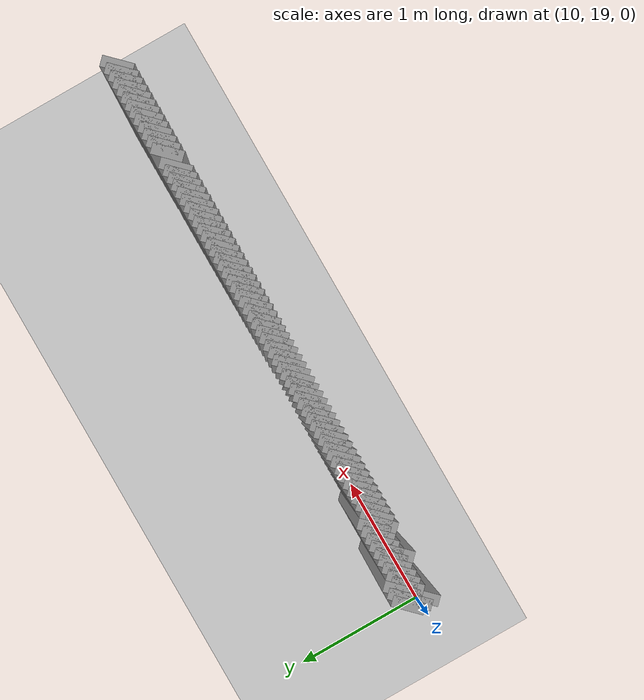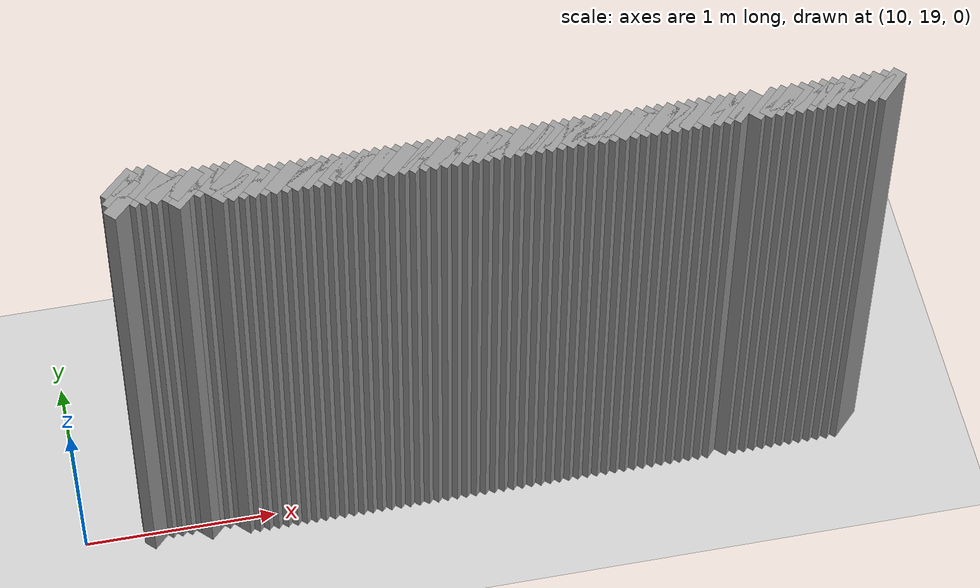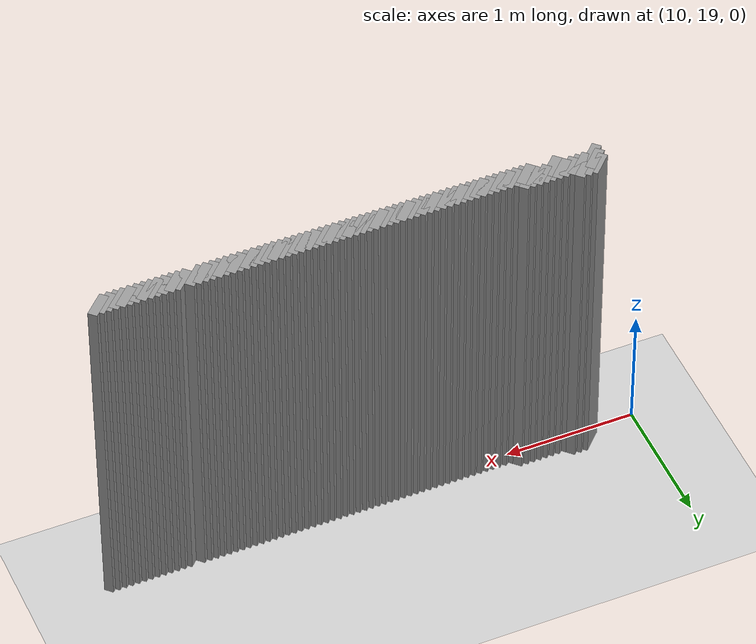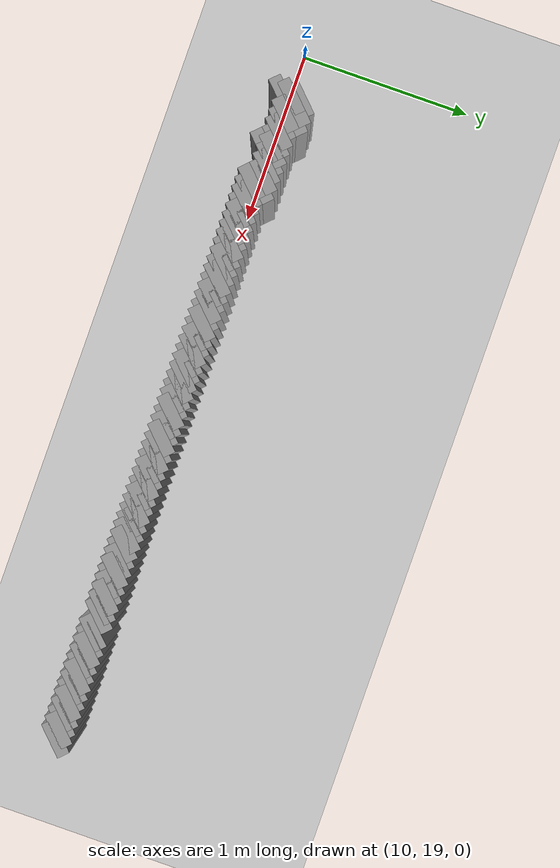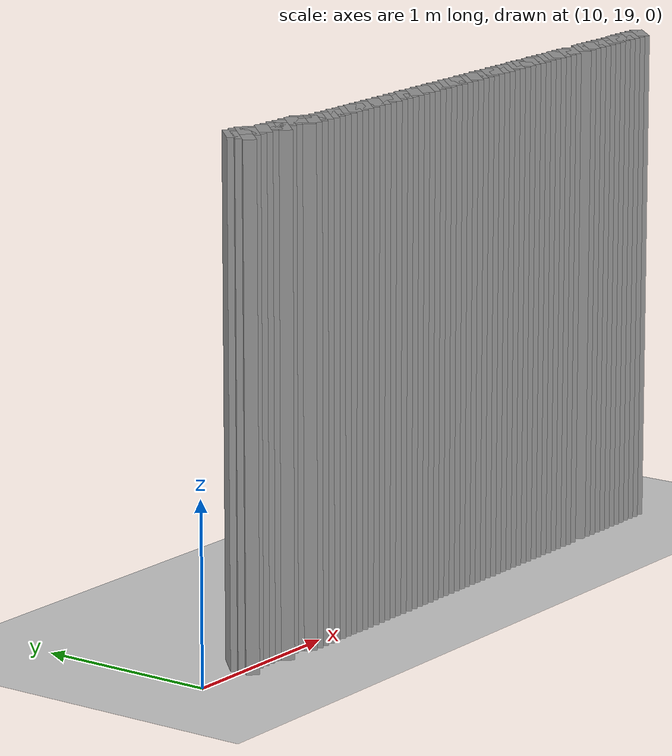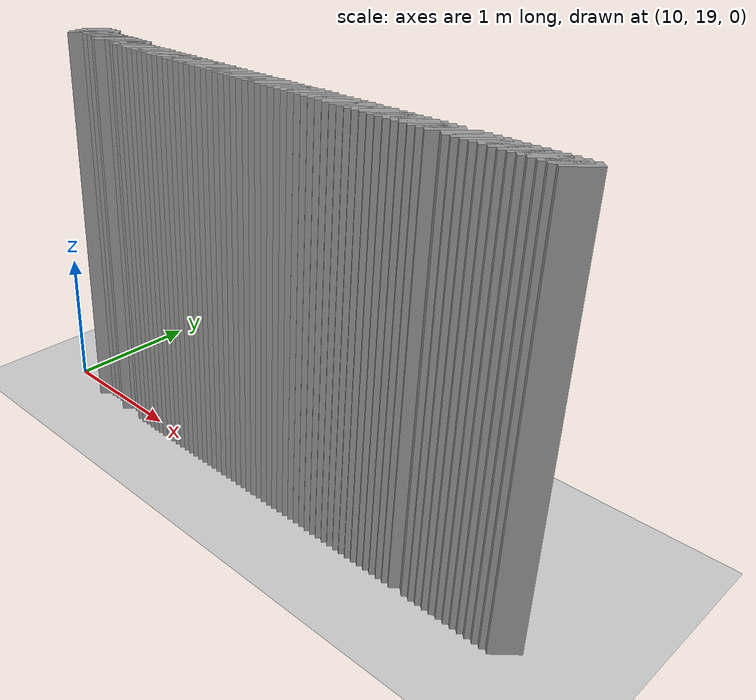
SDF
<sdf version="1.5">
 <world name="default">
  <include><uri>model://ground_plane</uri></include>
  <include><uri>model://sun</uri></include>
  <model name="grey_wall_1">
   <static>1</static>
   <link name="link">
    <pose>10.4 19.1  1.4 0 0 -0.785398163397</pose>
    <collision name="collision"><geometry><box><size>0.0707106781187 .2  2.8</size></box></geometry></collision>
    <visual name="visual">
     <cast_shadows>0</cast_shadows>
     <geometry><box><size>0.0707106781187 .2  2.8</size></box></geometry>
     <material>
      <script>
       <uri>model://grey_wall/materials/scripts</uri>
       <uri>model://grey_wall/materials/textures</uri>
       <name>vrc/grey_wall</name>
      </script>
     </material>
    </visual>
   </link>
  </model>
  <model name="grey_wall_2">
   <static>1</static>
   <link name="link">
    <pose>10.45 19.1  1.4 0 0 -0.785398163397</pose>
    <collision name="collision"><geometry><box><size>0.0707106781187 .2  2.8</size></box></geometry></collision>
    <visual name="visual">
     <cast_shadows>0</cast_shadows>
     <geometry><box><size>0.0707106781187 .2  2.8</size></box></geometry>
     <material>
      <script>
       <uri>model://grey_wall/materials/scripts</uri>
       <uri>model://grey_wall/materials/textures</uri>
       <name>vrc/grey_wall</name>
      </script>
     </material>
    </visual>
   </link>
  </model>
  <model name="grey_wall_3">
   <static>1</static>
   <link name="link">
    <pose>10.5 19.1  1.4 0 0 -0.785398163397</pose>
    <collision name="collision"><geometry><box><size>0.0707106781187 .2  2.8</size></box></geometry></collision>
    <visual name="visual">
     <cast_shadows>0</cast_shadows>
     <geometry><box><size>0.0707106781187 .2  2.8</size></box></geometry>
     <material>
      <script>
       <uri>model://grey_wall/materials/scripts</uri>
       <uri>model://grey_wall/materials/textures</uri>
       <name>vrc/grey_wall</name>
      </script>
     </material>
    </visual>
   </link>
  </model>
  <model name="grey_wall_4">
   <static>1</static>
   <link name="link">
    <pose>10.4 19.05  1.4 0 0 -0.785398163397</pose>
    <collision name="collision"><geometry><box><size>0.0707106781187 .2  2.8</size></box></geometry></collision>
    <visual name="visual">
     <cast_shadows>0</cast_shadows>
     <geometry><box><size>0.0707106781187 .2  2.8</size></box></geometry>
     <material>
      <script>
       <uri>model://grey_wall/materials/scripts</uri>
       <uri>model://grey_wall/materials/textures</uri>
       <name>vrc/grey_wall</name>
      </script>
     </material>
    </visual>
   </link>
  </model>
  <model name="grey_wall_5">
   <static>1</static>
   <link name="link">
    <pose>10.5 19.05  1.4 0 0 -0.785398163397</pose>
    <collision name="collision"><geometry><box><size>0.0707106781187 .2  2.8</size></box></geometry></collision>
    <visual name="visual">
     <cast_shadows>0</cast_shadows>
     <geometry><box><size>0.0707106781187 .2  2.8</size></box></geometry>
     <material>
      <script>
       <uri>model://grey_wall/materials/scripts</uri>
       <uri>model://grey_wall/materials/textures</uri>
       <name>vrc/grey_wall</name>
      </script>
     </material>
    </visual>
   </link>
  </model>
  <model name="grey_wall_6">
   <static>1</static>
   <link name="link">
    <pose>10.55 19.05  1.4 0 0 -0.785398163397</pose>
    <collision name="collision"><geometry><box><size>0.0707106781187 .2  2.8</size></box></geometry></collision>
    <visual name="visual">
     <cast_shadows>0</cast_shadows>
     <geometry><box><size>0.0707106781187 .2  2.8</size></box></geometry>
     <material>
      <script>
       <uri>model://grey_wall/materials/scripts</uri>
       <uri>model://grey_wall/materials/textures</uri>
       <name>vrc/grey_wall</name>
      </script>
     </material>
    </visual>
   </link>
  </model>
  <model name="grey_wall_7">
   <static>1</static>
   <link name="link">
    <pose>10.6 19.05  1.4 0 0 -0.785398163397</pose>
    <collision name="collision"><geometry><box><size>0.0707106781187 .2  2.8</size></box></geometry></collision>
    <visual name="visual">
     <cast_shadows>0</cast_shadows>
     <geometry><box><size>0.0707106781187 .2  2.8</size></box></geometry>
     <material>
      <script>
       <uri>model://grey_wall/materials/scripts</uri>
       <uri>model://grey_wall/materials/textures</uri>
       <name>vrc/grey_wall</name>
      </script>
     </material>
    </visual>
   </link>
  </model>
  <model name="grey_wall_8">
   <static>1</static>
   <link name="link">
    <pose>10.65 19.05  1.4 0 0 -0.785398163397</pose>
    <collision name="collision"><geometry><box><size>0.0707106781187 .2  2.8</size></box></geometry></collision>
    <visual name="visual">
     <cast_shadows>0</cast_shadows>
     <geometry><box><size>0.0707106781187 .2  2.8</size></box></geometry>
     <material>
      <script>
       <uri>model://grey_wall/materials/scripts</uri>
       <uri>model://grey_wall/materials/textures</uri>
       <name>vrc/grey_wall</name>
      </script>
     </material>
    </visual>
   </link>
  </model>
  <model name="grey_wall_9">
   <static>1</static>
   <link name="link">
    <pose>10.7 19.05  1.4 0 0 -0.785398163397</pose>
    <collision name="collision"><geometry><box><size>0.0707106781187 .2  2.8</size></box></geometry></collision>
    <visual name="visual">
     <cast_shadows>0</cast_shadows>
     <geometry><box><size>0.0707106781187 .2  2.8</size></box></geometry>
     <material>
      <script>
       <uri>model://grey_wall/materials/scripts</uri>
       <uri>model://grey_wall/materials/textures</uri>
       <name>vrc/grey_wall</name>
      </script>
     </material>
    </visual>
   </link>
  </model>
  <model name="grey_wall_10">
   <static>1</static>
   <link name="link">
    <pose>10.75 19.05  1.4 0 0 -0.785398163397</pose>
    <collision name="collision"><geometry><box><size>0.0707106781187 .2  2.8</size></box></geometry></collision>
    <visual name="visual">
     <cast_shadows>0</cast_shadows>
     <geometry><box><size>0.0707106781187 .2  2.8</size></box></geometry>
     <material>
      <script>
       <uri>model://grey_wall/materials/scripts</uri>
       <uri>model://grey_wall/materials/textures</uri>
       <name>vrc/grey_wall</name>
      </script>
     </material>
    </visual>
   </link>
  </model>
  <model name="grey_wall_11">
   <static>1</static>
   <link name="link">
    <pose>10.8 19.05  1.4 0 0 -0.785398163397</pose>
    <collision name="collision"><geometry><box><size>0.0707106781187 .2  2.8</size></box></geometry></collision>
    <visual name="visual">
     <cast_shadows>0</cast_shadows>
     <geometry><box><size>0.0707106781187 .2  2.8</size></box></geometry>
     <material>
      <script>
       <uri>model://grey_wall/materials/scripts</uri>
       <uri>model://grey_wall/materials/textures</uri>
       <name>vrc/grey_wall</name>
      </script>
     </material>
    </visual>
   </link>
  </model>
  <model name="grey_wall_12">
   <static>1</static>
   <link name="link">
    <pose>10.85 19.05  1.4 0 0 -0.785398163397</pose>
    <collision name="collision"><geometry><box><size>0.0707106781187 .2  2.8</size></box></geometry></collision>
    <visual name="visual">
     <cast_shadows>0</cast_shadows>
     <geometry><box><size>0.0707106781187 .2  2.8</size></box></geometry>
     <material>
      <script>
       <uri>model://grey_wall/materials/scripts</uri>
       <uri>model://grey_wall/materials/textures</uri>
       <name>vrc/grey_wall</name>
      </script>
     </material>
    </visual>
   </link>
  </model>
  <model name="grey_wall_13">
   <static>1</static>
   <link name="link">
    <pose>10.9 19.05  1.4 0 0 -0.785398163397</pose>
    <collision name="collision"><geometry><box><size>0.0707106781187 .2  2.8</size></box></geometry></collision>
    <visual name="visual">
     <cast_shadows>0</cast_shadows>
     <geometry><box><size>0.0707106781187 .2  2.8</size></box></geometry>
     <material>
      <script>
       <uri>model://grey_wall/materials/scripts</uri>
       <uri>model://grey_wall/materials/textures</uri>
       <name>vrc/grey_wall</name>
      </script>
     </material>
    </visual>
   </link>
  </model>
  <model name="grey_wall_14">
   <static>1</static>
   <link name="link">
    <pose>10.4 19.0  1.4 0 0 -0.785398163397</pose>
    <collision name="collision"><geometry><box><size>0.0707106781187 .2  2.8</size></box></geometry></collision>
    <visual name="visual">
     <cast_shadows>0</cast_shadows>
     <geometry><box><size>0.0707106781187 .2  2.8</size></box></geometry>
     <material>
      <script>
       <uri>model://grey_wall/materials/scripts</uri>
       <uri>model://grey_wall/materials/textures</uri>
       <name>vrc/grey_wall</name>
      </script>
     </material>
    </visual>
   </link>
  </model>
  <model name="grey_wall_15">
   <static>1</static>
   <link name="link">
    <pose>10.7 19.0  1.4 0 0 -0.785398163397</pose>
    <collision name="collision"><geometry><box><size>0.0707106781187 .2  2.8</size></box></geometry></collision>
    <visual name="visual">
     <cast_shadows>0</cast_shadows>
     <geometry><box><size>0.0707106781187 .2  2.8</size></box></geometry>
     <material>
      <script>
       <uri>model://grey_wall/materials/scripts</uri>
       <uri>model://grey_wall/materials/textures</uri>
       <name>vrc/grey_wall</name>
      </script>
     </material>
    </visual>
   </link>
  </model>
  <model name="grey_wall_16">
   <static>1</static>
   <link name="link">
    <pose>10.9 19.0  1.4 0 0 -0.785398163397</pose>
    <collision name="collision"><geometry><box><size>0.0707106781187 .2  2.8</size></box></geometry></collision>
    <visual name="visual">
     <cast_shadows>0</cast_shadows>
     <geometry><box><size>0.0707106781187 .2  2.8</size></box></geometry>
     <material>
      <script>
       <uri>model://grey_wall/materials/scripts</uri>
       <uri>model://grey_wall/materials/textures</uri>
       <name>vrc/grey_wall</name>
      </script>
     </material>
    </visual>
   </link>
  </model>
  <model name="grey_wall_17">
   <static>1</static>
   <link name="link">
    <pose>10.95 19.0  1.4 0 0 -0.785398163397</pose>
    <collision name="collision"><geometry><box><size>0.0707106781187 .2  2.8</size></box></geometry></collision>
    <visual name="visual">
     <cast_shadows>0</cast_shadows>
     <geometry><box><size>0.0707106781187 .2  2.8</size></box></geometry>
     <material>
      <script>
       <uri>model://grey_wall/materials/scripts</uri>
       <uri>model://grey_wall/materials/textures</uri>
       <name>vrc/grey_wall</name>
      </script>
     </material>
    </visual>
   </link>
  </model>
  <model name="grey_wall_18">
   <static>1</static>
   <link name="link">
    <pose>11.0 19.0  1.4 0 0 -0.785398163397</pose>
    <collision name="collision"><geometry><box><size>0.0707106781187 .2  2.8</size></box></geometry></collision>
    <visual name="visual">
     <cast_shadows>0</cast_shadows>
     <geometry><box><size>0.0707106781187 .2  2.8</size></box></geometry>
     <material>
      <script>
       <uri>model://grey_wall/materials/scripts</uri>
       <uri>model://grey_wall/materials/textures</uri>
       <name>vrc/grey_wall</name>
      </script>
     </material>
    </visual>
   </link>
  </model>
  <model name="grey_wall_19">
   <static>1</static>
   <link name="link">
    <pose>11.05 19.0  1.4 0 0 -0.785398163397</pose>
    <collision name="collision"><geometry><box><size>0.0707106781187 .2  2.8</size></box></geometry></collision>
    <visual name="visual">
     <cast_shadows>0</cast_shadows>
     <geometry><box><size>0.0707106781187 .2  2.8</size></box></geometry>
     <material>
      <script>
       <uri>model://grey_wall/materials/scripts</uri>
       <uri>model://grey_wall/materials/textures</uri>
       <name>vrc/grey_wall</name>
      </script>
     </material>
    </visual>
   </link>
  </model>
  <model name="grey_wall_20">
   <static>1</static>
   <link name="link">
    <pose>11.1 19.0  1.4 0 0 -0.785398163397</pose>
    <collision name="collision"><geometry><box><size>0.0707106781187 .2  2.8</size></box></geometry></collision>
    <visual name="visual">
     <cast_shadows>0</cast_shadows>
     <geometry><box><size>0.0707106781187 .2  2.8</size></box></geometry>
     <material>
      <script>
       <uri>model://grey_wall/materials/scripts</uri>
       <uri>model://grey_wall/materials/textures</uri>
       <name>vrc/grey_wall</name>
      </script>
     </material>
    </visual>
   </link>
  </model>
  <model name="grey_wall_21">
   <static>1</static>
   <link name="link">
    <pose>11.15 19.0  1.4 0 0 -0.785398163397</pose>
    <collision name="collision"><geometry><box><size>0.0707106781187 .2  2.8</size></box></geometry></collision>
    <visual name="visual">
     <cast_shadows>0</cast_shadows>
     <geometry><box><size>0.0707106781187 .2  2.8</size></box></geometry>
     <material>
      <script>
       <uri>model://grey_wall/materials/scripts</uri>
       <uri>model://grey_wall/materials/textures</uri>
       <name>vrc/grey_wall</name>
      </script>
     </material>
    </visual>
   </link>
  </model>
  <model name="grey_wall_22">
   <static>1</static>
   <link name="link">
    <pose>11.2 19.0  1.4 0 0 -0.785398163397</pose>
    <collision name="collision"><geometry><box><size>0.0707106781187 .2  2.8</size></box></geometry></collision>
    <visual name="visual">
     <cast_shadows>0</cast_shadows>
     <geometry><box><size>0.0707106781187 .2  2.8</size></box></geometry>
     <material>
      <script>
       <uri>model://grey_wall/materials/scripts</uri>
       <uri>model://grey_wall/materials/textures</uri>
       <name>vrc/grey_wall</name>
      </script>
     </material>
    </visual>
   </link>
  </model>
  <model name="grey_wall_23">
   <static>1</static>
   <link name="link">
    <pose>11.25 19.0  1.4 0 0 -0.785398163397</pose>
    <collision name="collision"><geometry><box><size>0.0707106781187 .2  2.8</size></box></geometry></collision>
    <visual name="visual">
     <cast_shadows>0</cast_shadows>
     <geometry><box><size>0.0707106781187 .2  2.8</size></box></geometry>
     <material>
      <script>
       <uri>model://grey_wall/materials/scripts</uri>
       <uri>model://grey_wall/materials/textures</uri>
       <name>vrc/grey_wall</name>
      </script>
     </material>
    </visual>
   </link>
  </model>
  <model name="grey_wall_24">
   <static>1</static>
   <link name="link">
    <pose>11.3 19.0  1.4 0 0 -0.785398163397</pose>
    <collision name="collision"><geometry><box><size>0.0707106781187 .2  2.8</size></box></geometry></collision>
    <visual name="visual">
     <cast_shadows>0</cast_shadows>
     <geometry><box><size>0.0707106781187 .2  2.8</size></box></geometry>
     <material>
      <script>
       <uri>model://grey_wall/materials/scripts</uri>
       <uri>model://grey_wall/materials/textures</uri>
       <name>vrc/grey_wall</name>
      </script>
     </material>
    </visual>
   </link>
  </model>
  <model name="grey_wall_25">
   <static>1</static>
   <link name="link">
    <pose>11.35 19.0  1.4 0 0 -0.785398163397</pose>
    <collision name="collision"><geometry><box><size>0.0707106781187 .2  2.8</size></box></geometry></collision>
    <visual name="visual">
     <cast_shadows>0</cast_shadows>
     <geometry><box><size>0.0707106781187 .2  2.8</size></box></geometry>
     <material>
      <script>
       <uri>model://grey_wall/materials/scripts</uri>
       <uri>model://grey_wall/materials/textures</uri>
       <name>vrc/grey_wall</name>
      </script>
     </material>
    </visual>
   </link>
  </model>
  <model name="grey_wall_26">
   <static>1</static>
   <link name="link">
    <pose>11.4 19.0  1.4 0 0 -0.785398163397</pose>
    <collision name="collision"><geometry><box><size>0.0707106781187 .2  2.8</size></box></geometry></collision>
    <visual name="visual">
     <cast_shadows>0</cast_shadows>
     <geometry><box><size>0.0707106781187 .2  2.8</size></box></geometry>
     <material>
      <script>
       <uri>model://grey_wall/materials/scripts</uri>
       <uri>model://grey_wall/materials/textures</uri>
       <name>vrc/grey_wall</name>
      </script>
     </material>
    </visual>
   </link>
  </model>
  <model name="grey_wall_27">
   <static>1</static>
   <link name="link">
    <pose>11.45 19.0  1.4 0 0 -0.785398163397</pose>
    <collision name="collision"><geometry><box><size>0.0707106781187 .2  2.8</size></box></geometry></collision>
    <visual name="visual">
     <cast_shadows>0</cast_shadows>
     <geometry><box><size>0.0707106781187 .2  2.8</size></box></geometry>
     <material>
      <script>
       <uri>model://grey_wall/materials/scripts</uri>
       <uri>model://grey_wall/materials/textures</uri>
       <name>vrc/grey_wall</name>
      </script>
     </material>
    </visual>
   </link>
  </model>
  <model name="grey_wall_28">
   <static>1</static>
   <link name="link">
    <pose>11.5 19.0  1.4 0 0 -0.785398163397</pose>
    <collision name="collision"><geometry><box><size>0.0707106781187 .2  2.8</size></box></geometry></collision>
    <visual name="visual">
     <cast_shadows>0</cast_shadows>
     <geometry><box><size>0.0707106781187 .2  2.8</size></box></geometry>
     <material>
      <script>
       <uri>model://grey_wall/materials/scripts</uri>
       <uri>model://grey_wall/materials/textures</uri>
       <name>vrc/grey_wall</name>
      </script>
     </material>
    </visual>
   </link>
  </model>
  <model name="grey_wall_29">
   <static>1</static>
   <link name="link">
    <pose>11.55 19.0  1.4 0 0 -0.785398163397</pose>
    <collision name="collision"><geometry><box><size>0.0707106781187 .2  2.8</size></box></geometry></collision>
    <visual name="visual">
     <cast_shadows>0</cast_shadows>
     <geometry><box><size>0.0707106781187 .2  2.8</size></box></geometry>
     <material>
      <script>
       <uri>model://grey_wall/materials/scripts</uri>
       <uri>model://grey_wall/materials/textures</uri>
       <name>vrc/grey_wall</name>
      </script>
     </material>
    </visual>
   </link>
  </model>
  <model name="grey_wall_30">
   <static>1</static>
   <link name="link">
    <pose>11.6 19.0  1.4 0 0 -0.785398163397</pose>
    <collision name="collision"><geometry><box><size>0.0707106781187 .2  2.8</size></box></geometry></collision>
    <visual name="visual">
     <cast_shadows>0</cast_shadows>
     <geometry><box><size>0.0707106781187 .2  2.8</size></box></geometry>
     <material>
      <script>
       <uri>model://grey_wall/materials/scripts</uri>
       <uri>model://grey_wall/materials/textures</uri>
       <name>vrc/grey_wall</name>
      </script>
     </material>
    </visual>
   </link>
  </model>
  <model name="grey_wall_31">
   <static>1</static>
   <link name="link">
    <pose>11.65 19.0  1.4 0 0 -0.785398163397</pose>
    <collision name="collision"><geometry><box><size>0.0707106781187 .2  2.8</size></box></geometry></collision>
    <visual name="visual">
     <cast_shadows>0</cast_shadows>
     <geometry><box><size>0.0707106781187 .2  2.8</size></box></geometry>
     <material>
      <script>
       <uri>model://grey_wall/materials/scripts</uri>
       <uri>model://grey_wall/materials/textures</uri>
       <name>vrc/grey_wall</name>
      </script>
     </material>
    </visual>
   </link>
  </model>
  <model name="grey_wall_32">
   <static>1</static>
   <link name="link">
    <pose>11.7 19.0  1.4 0 0 -0.785398163397</pose>
    <collision name="collision"><geometry><box><size>0.0707106781187 .2  2.8</size></box></geometry></collision>
    <visual name="visual">
     <cast_shadows>0</cast_shadows>
     <geometry><box><size>0.0707106781187 .2  2.8</size></box></geometry>
     <material>
      <script>
       <uri>model://grey_wall/materials/scripts</uri>
       <uri>model://grey_wall/materials/textures</uri>
       <name>vrc/grey_wall</name>
      </script>
     </material>
    </visual>
   </link>
  </model>
  <model name="grey_wall_33">
   <static>1</static>
   <link name="link">
    <pose>11.75 19.0  1.4 0 0 -0.785398163397</pose>
    <collision name="collision"><geometry><box><size>0.0707106781187 .2  2.8</size></box></geometry></collision>
    <visual name="visual">
     <cast_shadows>0</cast_shadows>
     <geometry><box><size>0.0707106781187 .2  2.8</size></box></geometry>
     <material>
      <script>
       <uri>model://grey_wall/materials/scripts</uri>
       <uri>model://grey_wall/materials/textures</uri>
       <name>vrc/grey_wall</name>
      </script>
     </material>
    </visual>
   </link>
  </model>
  <model name="grey_wall_34">
   <static>1</static>
   <link name="link">
    <pose>11.8 19.0  1.4 0 0 -0.785398163397</pose>
    <collision name="collision"><geometry><box><size>0.0707106781187 .2  2.8</size></box></geometry></collision>
    <visual name="visual">
     <cast_shadows>0</cast_shadows>
     <geometry><box><size>0.0707106781187 .2  2.8</size></box></geometry>
     <material>
      <script>
       <uri>model://grey_wall/materials/scripts</uri>
       <uri>model://grey_wall/materials/textures</uri>
       <name>vrc/grey_wall</name>
      </script>
     </material>
    </visual>
   </link>
  </model>
  <model name="grey_wall_35">
   <static>1</static>
   <link name="link">
    <pose>11.85 19.0  1.4 0 0 -0.785398163397</pose>
    <collision name="collision"><geometry><box><size>0.0707106781187 .2  2.8</size></box></geometry></collision>
    <visual name="visual">
     <cast_shadows>0</cast_shadows>
     <geometry><box><size>0.0707106781187 .2  2.8</size></box></geometry>
     <material>
      <script>
       <uri>model://grey_wall/materials/scripts</uri>
       <uri>model://grey_wall/materials/textures</uri>
       <name>vrc/grey_wall</name>
      </script>
     </material>
    </visual>
   </link>
  </model>
  <model name="grey_wall_36">
   <static>1</static>
   <link name="link">
    <pose>11.9 19.0  1.4 0 0 -0.785398163397</pose>
    <collision name="collision"><geometry><box><size>0.0707106781187 .2  2.8</size></box></geometry></collision>
    <visual name="visual">
     <cast_shadows>0</cast_shadows>
     <geometry><box><size>0.0707106781187 .2  2.8</size></box></geometry>
     <material>
      <script>
       <uri>model://grey_wall/materials/scripts</uri>
       <uri>model://grey_wall/materials/textures</uri>
       <name>vrc/grey_wall</name>
      </script>
     </material>
    </visual>
   </link>
  </model>
  <model name="grey_wall_37">
   <static>1</static>
   <link name="link">
    <pose>11.95 19.0  1.4 0 0 -0.785398163397</pose>
    <collision name="collision"><geometry><box><size>0.0707106781187 .2  2.8</size></box></geometry></collision>
    <visual name="visual">
     <cast_shadows>0</cast_shadows>
     <geometry><box><size>0.0707106781187 .2  2.8</size></box></geometry>
     <material>
      <script>
       <uri>model://grey_wall/materials/scripts</uri>
       <uri>model://grey_wall/materials/textures</uri>
       <name>vrc/grey_wall</name>
      </script>
     </material>
    </visual>
   </link>
  </model>
  <model name="grey_wall_38">
   <static>1</static>
   <link name="link">
    <pose>12.0 19.0  1.4 0 0 -0.785398163397</pose>
    <collision name="collision"><geometry><box><size>0.0707106781187 .2  2.8</size></box></geometry></collision>
    <visual name="visual">
     <cast_shadows>0</cast_shadows>
     <geometry><box><size>0.0707106781187 .2  2.8</size></box></geometry>
     <material>
      <script>
       <uri>model://grey_wall/materials/scripts</uri>
       <uri>model://grey_wall/materials/textures</uri>
       <name>vrc/grey_wall</name>
      </script>
     </material>
    </visual>
   </link>
  </model>
  <model name="grey_wall_39">
   <static>1</static>
   <link name="link">
    <pose>12.05 19.0  1.4 0 0 -0.785398163397</pose>
    <collision name="collision"><geometry><box><size>0.0707106781187 .2  2.8</size></box></geometry></collision>
    <visual name="visual">
     <cast_shadows>0</cast_shadows>
     <geometry><box><size>0.0707106781187 .2  2.8</size></box></geometry>
     <material>
      <script>
       <uri>model://grey_wall/materials/scripts</uri>
       <uri>model://grey_wall/materials/textures</uri>
       <name>vrc/grey_wall</name>
      </script>
     </material>
    </visual>
   </link>
  </model>
  <model name="grey_wall_40">
   <static>1</static>
   <link name="link">
    <pose>12.1 19.0  1.4 0 0 -0.785398163397</pose>
    <collision name="collision"><geometry><box><size>0.0707106781187 .2  2.8</size></box></geometry></collision>
    <visual name="visual">
     <cast_shadows>0</cast_shadows>
     <geometry><box><size>0.0707106781187 .2  2.8</size></box></geometry>
     <material>
      <script>
       <uri>model://grey_wall/materials/scripts</uri>
       <uri>model://grey_wall/materials/textures</uri>
       <name>vrc/grey_wall</name>
      </script>
     </material>
    </visual>
   </link>
  </model>
  <model name="grey_wall_41">
   <static>1</static>
   <link name="link">
    <pose>12.15 19.0  1.4 0 0 -0.785398163397</pose>
    <collision name="collision"><geometry><box><size>0.0707106781187 .2  2.8</size></box></geometry></collision>
    <visual name="visual">
     <cast_shadows>0</cast_shadows>
     <geometry><box><size>0.0707106781187 .2  2.8</size></box></geometry>
     <material>
      <script>
       <uri>model://grey_wall/materials/scripts</uri>
       <uri>model://grey_wall/materials/textures</uri>
       <name>vrc/grey_wall</name>
      </script>
     </material>
    </visual>
   </link>
  </model>
  <model name="grey_wall_42">
   <static>1</static>
   <link name="link">
    <pose>12.2 19.0  1.4 0 0 -0.785398163397</pose>
    <collision name="collision"><geometry><box><size>0.0707106781187 .2  2.8</size></box></geometry></collision>
    <visual name="visual">
     <cast_shadows>0</cast_shadows>
     <geometry><box><size>0.0707106781187 .2  2.8</size></box></geometry>
     <material>
      <script>
       <uri>model://grey_wall/materials/scripts</uri>
       <uri>model://grey_wall/materials/textures</uri>
       <name>vrc/grey_wall</name>
      </script>
     </material>
    </visual>
   </link>
  </model>
  <model name="grey_wall_43">
   <static>1</static>
   <link name="link">
    <pose>12.25 19.0  1.4 0 0 -0.785398163397</pose>
    <collision name="collision"><geometry><box><size>0.0707106781187 .2  2.8</size></box></geometry></collision>
    <visual name="visual">
     <cast_shadows>0</cast_shadows>
     <geometry><box><size>0.0707106781187 .2  2.8</size></box></geometry>
     <material>
      <script>
       <uri>model://grey_wall/materials/scripts</uri>
       <uri>model://grey_wall/materials/textures</uri>
       <name>vrc/grey_wall</name>
      </script>
     </material>
    </visual>
   </link>
  </model>
  <model name="grey_wall_44">
   <static>1</static>
   <link name="link">
    <pose>12.3 19.0  1.4 0 0 -0.785398163397</pose>
    <collision name="collision"><geometry><box><size>0.0707106781187 .2  2.8</size></box></geometry></collision>
    <visual name="visual">
     <cast_shadows>0</cast_shadows>
     <geometry><box><size>0.0707106781187 .2  2.8</size></box></geometry>
     <material>
      <script>
       <uri>model://grey_wall/materials/scripts</uri>
       <uri>model://grey_wall/materials/textures</uri>
       <name>vrc/grey_wall</name>
      </script>
     </material>
    </visual>
   </link>
  </model>
  <model name="grey_wall_45">
   <static>1</static>
   <link name="link">
    <pose>12.35 19.0  1.4 0 0 -0.785398163397</pose>
    <collision name="collision"><geometry><box><size>0.0707106781187 .2  2.8</size></box></geometry></collision>
    <visual name="visual">
     <cast_shadows>0</cast_shadows>
     <geometry><box><size>0.0707106781187 .2  2.8</size></box></geometry>
     <material>
      <script>
       <uri>model://grey_wall/materials/scripts</uri>
       <uri>model://grey_wall/materials/textures</uri>
       <name>vrc/grey_wall</name>
      </script>
     </material>
    </visual>
   </link>
  </model>
  <model name="grey_wall_46">
   <static>1</static>
   <link name="link">
    <pose>12.4 19.0  1.4 0 0 -0.785398163397</pose>
    <collision name="collision"><geometry><box><size>0.0707106781187 .2  2.8</size></box></geometry></collision>
    <visual name="visual">
     <cast_shadows>0</cast_shadows>
     <geometry><box><size>0.0707106781187 .2  2.8</size></box></geometry>
     <material>
      <script>
       <uri>model://grey_wall/materials/scripts</uri>
       <uri>model://grey_wall/materials/textures</uri>
       <name>vrc/grey_wall</name>
      </script>
     </material>
    </visual>
   </link>
  </model>
  <model name="grey_wall_47">
   <static>1</static>
   <link name="link">
    <pose>12.45 19.0  1.4 0 0 -0.785398163397</pose>
    <collision name="collision"><geometry><box><size>0.0707106781187 .2  2.8</size></box></geometry></collision>
    <visual name="visual">
     <cast_shadows>0</cast_shadows>
     <geometry><box><size>0.0707106781187 .2  2.8</size></box></geometry>
     <material>
      <script>
       <uri>model://grey_wall/materials/scripts</uri>
       <uri>model://grey_wall/materials/textures</uri>
       <name>vrc/grey_wall</name>
      </script>
     </material>
    </visual>
   </link>
  </model>
  <model name="grey_wall_48">
   <static>1</static>
   <link name="link">
    <pose>12.5 19.0  1.4 0 0 -0.785398163397</pose>
    <collision name="collision"><geometry><box><size>0.0707106781187 .2  2.8</size></box></geometry></collision>
    <visual name="visual">
     <cast_shadows>0</cast_shadows>
     <geometry><box><size>0.0707106781187 .2  2.8</size></box></geometry>
     <material>
      <script>
       <uri>model://grey_wall/materials/scripts</uri>
       <uri>model://grey_wall/materials/textures</uri>
       <name>vrc/grey_wall</name>
      </script>
     </material>
    </visual>
   </link>
  </model>
  <model name="grey_wall_49">
   <static>1</static>
   <link name="link">
    <pose>12.55 19.0  1.4 0 0 -0.785398163397</pose>
    <collision name="collision"><geometry><box><size>0.0707106781187 .2  2.8</size></box></geometry></collision>
    <visual name="visual">
     <cast_shadows>0</cast_shadows>
     <geometry><box><size>0.0707106781187 .2  2.8</size></box></geometry>
     <material>
      <script>
       <uri>model://grey_wall/materials/scripts</uri>
       <uri>model://grey_wall/materials/textures</uri>
       <name>vrc/grey_wall</name>
      </script>
     </material>
    </visual>
   </link>
  </model>
  <model name="grey_wall_50">
   <static>1</static>
   <link name="link">
    <pose>12.6 19.0  1.4 0 0 -0.785398163397</pose>
    <collision name="collision"><geometry><box><size>0.0707106781187 .2  2.8</size></box></geometry></collision>
    <visual name="visual">
     <cast_shadows>0</cast_shadows>
     <geometry><box><size>0.0707106781187 .2  2.8</size></box></geometry>
     <material>
      <script>
       <uri>model://grey_wall/materials/scripts</uri>
       <uri>model://grey_wall/materials/textures</uri>
       <name>vrc/grey_wall</name>
      </script>
     </material>
    </visual>
   </link>
  </model>
  <model name="grey_wall_51">
   <static>1</static>
   <link name="link">
    <pose>12.65 19.0  1.4 0 0 -0.785398163397</pose>
    <collision name="collision"><geometry><box><size>0.0707106781187 .2  2.8</size></box></geometry></collision>
    <visual name="visual">
     <cast_shadows>0</cast_shadows>
     <geometry><box><size>0.0707106781187 .2  2.8</size></box></geometry>
     <material>
      <script>
       <uri>model://grey_wall/materials/scripts</uri>
       <uri>model://grey_wall/materials/textures</uri>
       <name>vrc/grey_wall</name>
      </script>
     </material>
    </visual>
   </link>
  </model>
  <model name="grey_wall_52">
   <static>1</static>
   <link name="link">
    <pose>12.7 19.0  1.4 0 0 -0.785398163397</pose>
    <collision name="collision"><geometry><box><size>0.0707106781187 .2  2.8</size></box></geometry></collision>
    <visual name="visual">
     <cast_shadows>0</cast_shadows>
     <geometry><box><size>0.0707106781187 .2  2.8</size></box></geometry>
     <material>
      <script>
       <uri>model://grey_wall/materials/scripts</uri>
       <uri>model://grey_wall/materials/textures</uri>
       <name>vrc/grey_wall</name>
      </script>
     </material>
    </visual>
   </link>
  </model>
  <model name="grey_wall_53">
   <static>1</static>
   <link name="link">
    <pose>12.75 19.0  1.4 0 0 -0.785398163397</pose>
    <collision name="collision"><geometry><box><size>0.0707106781187 .2  2.8</size></box></geometry></collision>
    <visual name="visual">
     <cast_shadows>0</cast_shadows>
     <geometry><box><size>0.0707106781187 .2  2.8</size></box></geometry>
     <material>
      <script>
       <uri>model://grey_wall/materials/scripts</uri>
       <uri>model://grey_wall/materials/textures</uri>
       <name>vrc/grey_wall</name>
      </script>
     </material>
    </visual>
   </link>
  </model>
  <model name="grey_wall_54">
   <static>1</static>
   <link name="link">
    <pose>12.8 19.0  1.4 0 0 -0.785398163397</pose>
    <collision name="collision"><geometry><box><size>0.0707106781187 .2  2.8</size></box></geometry></collision>
    <visual name="visual">
     <cast_shadows>0</cast_shadows>
     <geometry><box><size>0.0707106781187 .2  2.8</size></box></geometry>
     <material>
      <script>
       <uri>model://grey_wall/materials/scripts</uri>
       <uri>model://grey_wall/materials/textures</uri>
       <name>vrc/grey_wall</name>
      </script>
     </material>
    </visual>
   </link>
  </model>
  <model name="grey_wall_55">
   <static>1</static>
   <link name="link">
    <pose>12.85 19.0  1.4 0 0 -0.785398163397</pose>
    <collision name="collision"><geometry><box><size>0.0707106781187 .2  2.8</size></box></geometry></collision>
    <visual name="visual">
     <cast_shadows>0</cast_shadows>
     <geometry><box><size>0.0707106781187 .2  2.8</size></box></geometry>
     <material>
      <script>
       <uri>model://grey_wall/materials/scripts</uri>
       <uri>model://grey_wall/materials/textures</uri>
       <name>vrc/grey_wall</name>
      </script>
     </material>
    </visual>
   </link>
  </model>
  <model name="grey_wall_56">
   <static>1</static>
   <link name="link">
    <pose>12.9 19.0  1.4 0 0 -0.785398163397</pose>
    <collision name="collision"><geometry><box><size>0.0707106781187 .2  2.8</size></box></geometry></collision>
    <visual name="visual">
     <cast_shadows>0</cast_shadows>
     <geometry><box><size>0.0707106781187 .2  2.8</size></box></geometry>
     <material>
      <script>
       <uri>model://grey_wall/materials/scripts</uri>
       <uri>model://grey_wall/materials/textures</uri>
       <name>vrc/grey_wall</name>
      </script>
     </material>
    </visual>
   </link>
  </model>
  <model name="grey_wall_57">
   <static>1</static>
   <link name="link">
    <pose>12.95 19.0  1.4 0 0 -0.785398163397</pose>
    <collision name="collision"><geometry><box><size>0.0707106781187 .2  2.8</size></box></geometry></collision>
    <visual name="visual">
     <cast_shadows>0</cast_shadows>
     <geometry><box><size>0.0707106781187 .2  2.8</size></box></geometry>
     <material>
      <script>
       <uri>model://grey_wall/materials/scripts</uri>
       <uri>model://grey_wall/materials/textures</uri>
       <name>vrc/grey_wall</name>
      </script>
     </material>
    </visual>
   </link>
  </model>
  <model name="grey_wall_58">
   <static>1</static>
   <link name="link">
    <pose>13.0 19.0  1.4 0 0 -0.785398163397</pose>
    <collision name="collision"><geometry><box><size>0.0707106781187 .2  2.8</size></box></geometry></collision>
    <visual name="visual">
     <cast_shadows>0</cast_shadows>
     <geometry><box><size>0.0707106781187 .2  2.8</size></box></geometry>
     <material>
      <script>
       <uri>model://grey_wall/materials/scripts</uri>
       <uri>model://grey_wall/materials/textures</uri>
       <name>vrc/grey_wall</name>
      </script>
     </material>
    </visual>
   </link>
  </model>
  <model name="grey_wall_59">
   <static>1</static>
   <link name="link">
    <pose>13.05 19.0  1.4 0 0 -0.785398163397</pose>
    <collision name="collision"><geometry><box><size>0.0707106781187 .2  2.8</size></box></geometry></collision>
    <visual name="visual">
     <cast_shadows>0</cast_shadows>
     <geometry><box><size>0.0707106781187 .2  2.8</size></box></geometry>
     <material>
      <script>
       <uri>model://grey_wall/materials/scripts</uri>
       <uri>model://grey_wall/materials/textures</uri>
       <name>vrc/grey_wall</name>
      </script>
     </material>
    </visual>
   </link>
  </model>
  <model name="grey_wall_60">
   <static>1</static>
   <link name="link">
    <pose>13.1 19.0  1.4 0 0 -0.785398163397</pose>
    <collision name="collision"><geometry><box><size>0.0707106781187 .2  2.8</size></box></geometry></collision>
    <visual name="visual">
     <cast_shadows>0</cast_shadows>
     <geometry><box><size>0.0707106781187 .2  2.8</size></box></geometry>
     <material>
      <script>
       <uri>model://grey_wall/materials/scripts</uri>
       <uri>model://grey_wall/materials/textures</uri>
       <name>vrc/grey_wall</name>
      </script>
     </material>
    </visual>
   </link>
  </model>
  <model name="grey_wall_61">
   <static>1</static>
   <link name="link">
    <pose>13.15 19.0  1.4 0 0 -0.785398163397</pose>
    <collision name="collision"><geometry><box><size>0.0707106781187 .2  2.8</size></box></geometry></collision>
    <visual name="visual">
     <cast_shadows>0</cast_shadows>
     <geometry><box><size>0.0707106781187 .2  2.8</size></box></geometry>
     <material>
      <script>
       <uri>model://grey_wall/materials/scripts</uri>
       <uri>model://grey_wall/materials/textures</uri>
       <name>vrc/grey_wall</name>
      </script>
     </material>
    </visual>
   </link>
  </model>
  <model name="grey_wall_62">
   <static>1</static>
   <link name="link">
    <pose>13.2 19.0  1.4 0 0 -0.785398163397</pose>
    <collision name="collision"><geometry><box><size>0.0707106781187 .2  2.8</size></box></geometry></collision>
    <visual name="visual">
     <cast_shadows>0</cast_shadows>
     <geometry><box><size>0.0707106781187 .2  2.8</size></box></geometry>
     <material>
      <script>
       <uri>model://grey_wall/materials/scripts</uri>
       <uri>model://grey_wall/materials/textures</uri>
       <name>vrc/grey_wall</name>
      </script>
     </material>
    </visual>
   </link>
  </model>
  <model name="grey_wall_63">
   <static>1</static>
   <link name="link">
    <pose>13.25 19.0  1.4 0 0 -0.785398163397</pose>
    <collision name="collision"><geometry><box><size>0.0707106781187 .2  2.8</size></box></geometry></collision>
    <visual name="visual">
     <cast_shadows>0</cast_shadows>
     <geometry><box><size>0.0707106781187 .2  2.8</size></box></geometry>
     <material>
      <script>
       <uri>model://grey_wall/materials/scripts</uri>
       <uri>model://grey_wall/materials/textures</uri>
       <name>vrc/grey_wall</name>
      </script>
     </material>
    </visual>
   </link>
  </model>
  <model name="grey_wall_64">
   <static>1</static>
   <link name="link">
    <pose>13.3 19.0  1.4 0 0 -0.785398163397</pose>
    <collision name="collision"><geometry><box><size>0.0707106781187 .2  2.8</size></box></geometry></collision>
    <visual name="visual">
     <cast_shadows>0</cast_shadows>
     <geometry><box><size>0.0707106781187 .2  2.8</size></box></geometry>
     <material>
      <script>
       <uri>model://grey_wall/materials/scripts</uri>
       <uri>model://grey_wall/materials/textures</uri>
       <name>vrc/grey_wall</name>
      </script>
     </material>
    </visual>
   </link>
  </model>
  <model name="grey_wall_65">
   <static>1</static>
   <link name="link">
    <pose>13.35 19.0  1.4 0 0 -0.785398163397</pose>
    <collision name="collision"><geometry><box><size>0.0707106781187 .2  2.8</size></box></geometry></collision>
    <visual name="visual">
     <cast_shadows>0</cast_shadows>
     <geometry><box><size>0.0707106781187 .2  2.8</size></box></geometry>
     <material>
      <script>
       <uri>model://grey_wall/materials/scripts</uri>
       <uri>model://grey_wall/materials/textures</uri>
       <name>vrc/grey_wall</name>
      </script>
     </material>
    </visual>
   </link>
  </model>
  <model name="grey_wall_66">
   <static>1</static>
   <link name="link">
    <pose>13.45 19.0  1.4 0 0 -0.785398163397</pose>
    <collision name="collision"><geometry><box><size>0.0707106781187 .2  2.8</size></box></geometry></collision>
    <visual name="visual">
     <cast_shadows>0</cast_shadows>
     <geometry><box><size>0.0707106781187 .2  2.8</size></box></geometry>
     <material>
      <script>
       <uri>model://grey_wall/materials/scripts</uri>
       <uri>model://grey_wall/materials/textures</uri>
       <name>vrc/grey_wall</name>
      </script>
     </material>
    </visual>
   </link>
  </model>
  <model name="grey_wall_67">
   <static>1</static>
   <link name="link">
    <pose>13.5 19.0  1.4 0 0 -0.785398163397</pose>
    <collision name="collision"><geometry><box><size>0.0707106781187 .2  2.8</size></box></geometry></collision>
    <visual name="visual">
     <cast_shadows>0</cast_shadows>
     <geometry><box><size>0.0707106781187 .2  2.8</size></box></geometry>
     <material>
      <script>
       <uri>model://grey_wall/materials/scripts</uri>
       <uri>model://grey_wall/materials/textures</uri>
       <name>vrc/grey_wall</name>
      </script>
     </material>
    </visual>
   </link>
  </model>
  <model name="grey_wall_68">
   <static>1</static>
   <link name="link">
    <pose>13.55 19.0  1.4 0 0 -0.785398163397</pose>
    <collision name="collision"><geometry><box><size>0.0707106781187 .2  2.8</size></box></geometry></collision>
    <visual name="visual">
     <cast_shadows>0</cast_shadows>
     <geometry><box><size>0.0707106781187 .2  2.8</size></box></geometry>
     <material>
      <script>
       <uri>model://grey_wall/materials/scripts</uri>
       <uri>model://grey_wall/materials/textures</uri>
       <name>vrc/grey_wall</name>
      </script>
     </material>
    </visual>
   </link>
  </model>
  <model name="grey_wall_69">
   <static>1</static>
   <link name="link">
    <pose>13.6 19.0  1.4 0 0 -0.785398163397</pose>
    <collision name="collision"><geometry><box><size>0.0707106781187 .2  2.8</size></box></geometry></collision>
    <visual name="visual">
     <cast_shadows>0</cast_shadows>
     <geometry><box><size>0.0707106781187 .2  2.8</size></box></geometry>
     <material>
      <script>
       <uri>model://grey_wall/materials/scripts</uri>
       <uri>model://grey_wall/materials/textures</uri>
       <name>vrc/grey_wall</name>
      </script>
     </material>
    </visual>
   </link>
  </model>
  <model name="grey_wall_70">
   <static>1</static>
   <link name="link">
    <pose>13.65 19.0  1.4 0 0 -0.785398163397</pose>
    <collision name="collision"><geometry><box><size>0.0707106781187 .2  2.8</size></box></geometry></collision>
    <visual name="visual">
     <cast_shadows>0</cast_shadows>
     <geometry><box><size>0.0707106781187 .2  2.8</size></box></geometry>
     <material>
      <script>
       <uri>model://grey_wall/materials/scripts</uri>
       <uri>model://grey_wall/materials/textures</uri>
       <name>vrc/grey_wall</name>
      </script>
     </material>
    </visual>
   </link>
  </model>
  <model name="grey_wall_71">
   <static>1</static>
   <link name="link">
    <pose>13.7 19.0  1.4 0 0 -0.785398163397</pose>
    <collision name="collision"><geometry><box><size>0.0707106781187 .2  2.8</size></box></geometry></collision>
    <visual name="visual">
     <cast_shadows>0</cast_shadows>
     <geometry><box><size>0.0707106781187 .2  2.8</size></box></geometry>
     <material>
      <script>
       <uri>model://grey_wall/materials/scripts</uri>
       <uri>model://grey_wall/materials/textures</uri>
       <name>vrc/grey_wall</name>
      </script>
     </material>
    </visual>
   </link>
  </model>
  <model name="grey_wall_72">
   <static>1</static>
   <link name="link">
    <pose>13.75 19.0  1.4 0 0 -0.785398163397</pose>
    <collision name="collision"><geometry><box><size>0.0707106781187 .2  2.8</size></box></geometry></collision>
    <visual name="visual">
     <cast_shadows>0</cast_shadows>
     <geometry><box><size>0.0707106781187 .2  2.8</size></box></geometry>
     <material>
      <script>
       <uri>model://grey_wall/materials/scripts</uri>
       <uri>model://grey_wall/materials/textures</uri>
       <name>vrc/grey_wall</name>
      </script>
     </material>
    </visual>
   </link>
  </model>
  <model name="grey_wall_73">
   <static>1</static>
   <link name="link">
    <pose>13.8 19.0  1.4 0 0 -0.785398163397</pose>
    <collision name="collision"><geometry><box><size>0.0707106781187 .2  2.8</size></box></geometry></collision>
    <visual name="visual">
     <cast_shadows>0</cast_shadows>
     <geometry><box><size>0.0707106781187 .2  2.8</size></box></geometry>
     <material>
      <script>
       <uri>model://grey_wall/materials/scripts</uri>
       <uri>model://grey_wall/materials/textures</uri>
       <name>vrc/grey_wall</name>
      </script>
     </material>
    </visual>
   </link>
  </model>
  <model name="grey_wall_74">
   <static>1</static>
   <link name="link">
    <pose>13.85 19.0  1.4 0 0 -0.785398163397</pose>
    <collision name="collision"><geometry><box><size>0.0707106781187 .2  2.8</size></box></geometry></collision>
    <visual name="visual">
     <cast_shadows>0</cast_shadows>
     <geometry><box><size>0.0707106781187 .2  2.8</size></box></geometry>
     <material>
      <script>
       <uri>model://grey_wall/materials/scripts</uri>
       <uri>model://grey_wall/materials/textures</uri>
       <name>vrc/grey_wall</name>
      </script>
     </material>
    </visual>
   </link>
  </model>
  <model name="grey_wall_75">
   <static>1</static>
   <link name="link">
    <pose>13.9 19.0  1.4 0 0 -0.785398163397</pose>
    <collision name="collision"><geometry><box><size>0.0707106781187 .2  2.8</size></box></geometry></collision>
    <visual name="visual">
     <cast_shadows>0</cast_shadows>
     <geometry><box><size>0.0707106781187 .2  2.8</size></box></geometry>
     <material>
      <script>
       <uri>model://grey_wall/materials/scripts</uri>
       <uri>model://grey_wall/materials/textures</uri>
       <name>vrc/grey_wall</name>
      </script>
     </material>
    </visual>
   </link>
  </model>
  <model name="grey_wall_76">
   <static>1</static>
   <link name="link">
    <pose>13.95 19.0  1.4 0 0 -0.785398163397</pose>
    <collision name="collision"><geometry><box><size>0.0707106781187 .2  2.8</size></box></geometry></collision>
    <visual name="visual">
     <cast_shadows>0</cast_shadows>
     <geometry><box><size>0.0707106781187 .2  2.8</size></box></geometry>
     <material>
      <script>
       <uri>model://grey_wall/materials/scripts</uri>
       <uri>model://grey_wall/materials/textures</uri>
       <name>vrc/grey_wall</name>
      </script>
     </material>
    </visual>
   </link>
  </model>
  <model name="grey_wall_77">
   <static>1</static>
   <link name="link">
    <pose>14.0 19.0  1.4 0 0 -0.785398163397</pose>
    <collision name="collision"><geometry><box><size>0.0707106781187 .2  2.8</size></box></geometry></collision>
    <visual name="visual">
     <cast_shadows>0</cast_shadows>
     <geometry><box><size>0.0707106781187 .2  2.8</size></box></geometry>
     <material>
      <script>
       <uri>model://grey_wall/materials/scripts</uri>
       <uri>model://grey_wall/materials/textures</uri>
       <name>vrc/grey_wall</name>
      </script>
     </material>
    </visual>
   </link>
  </model>
  <model name="grey_wall_78">
   <static>1</static>
   <link name="link">
    <pose>14.05 19.0  1.4 0 0 -0.785398163397</pose>
    <collision name="collision"><geometry><box><size>0.0707106781187 .2  2.8</size></box></geometry></collision>
    <visual name="visual">
     <cast_shadows>0</cast_shadows>
     <geometry><box><size>0.0707106781187 .2  2.8</size></box></geometry>
     <material>
      <script>
       <uri>model://grey_wall/materials/scripts</uri>
       <uri>model://grey_wall/materials/textures</uri>
       <name>vrc/grey_wall</name>
      </script>
     </material>
    </visual>
   </link>
  </model>
 </world>
</sdf>
